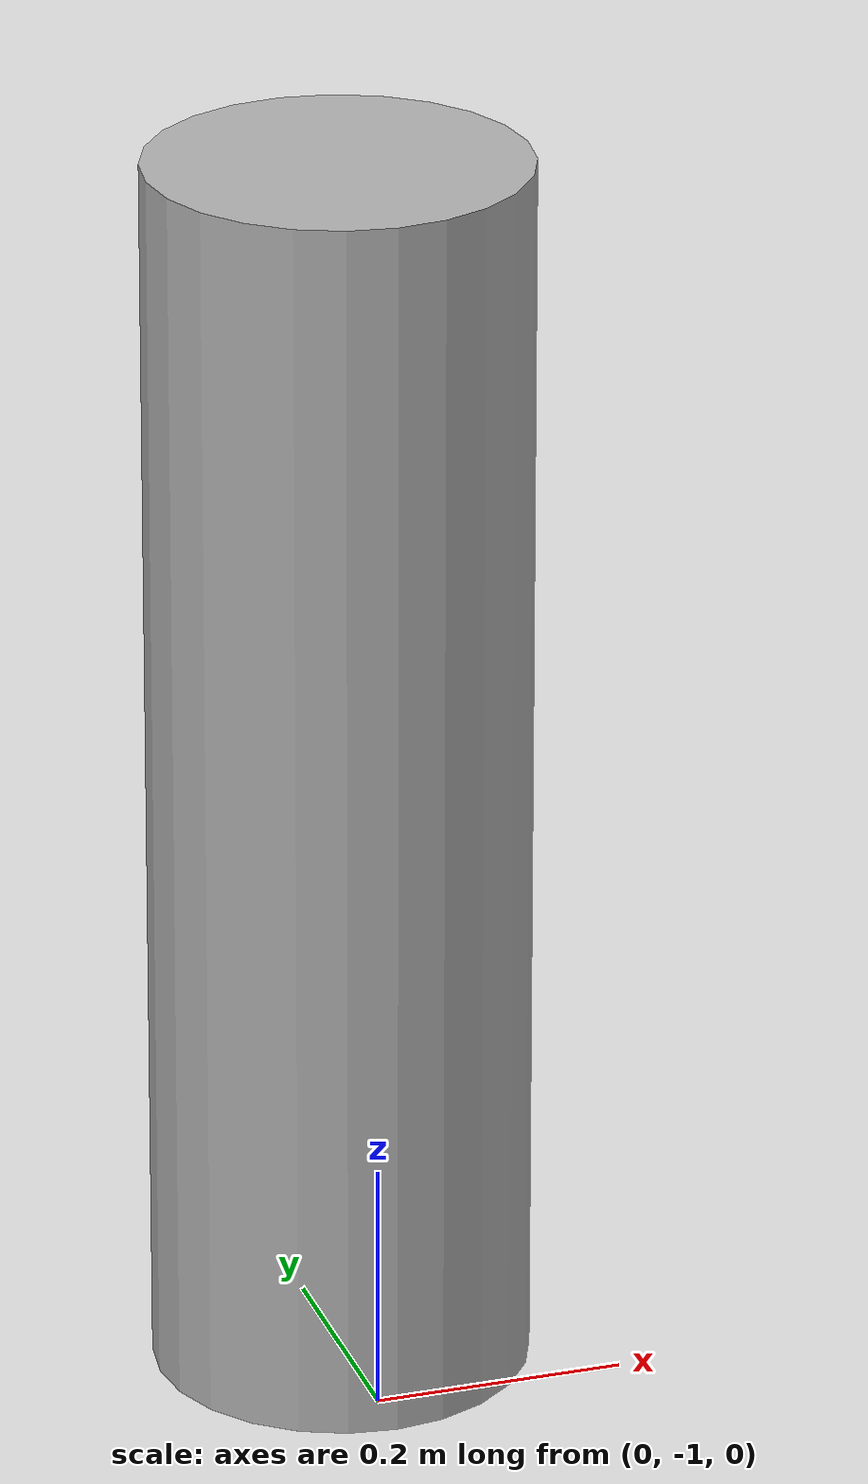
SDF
<sdf version='1.12'>
  <model name='cylinder_0'>
    <plugin filename="gz-sim-touchplugin-system"            name="gz::sim::systems::TouchPlugin">        <target>turtlebot3_burger</target>        <namespace>obstacle</namespace>        <time>0.001</time>        <enabled>true</enabled>    </plugin>    <pose>0.0 -0.9 0.5 0.0 0.0 0.0</pose>
    <link name='cylinder_link'>
      <sensor name='sensor_contact' type='contact'>          <contact>              <collision>cylinder_collision</collision>          </contact>      </sensor>      <inertial>
        <inertia>
          <ixx>10.674999999999999</ixx>
          <ixy>0</ixy>
          <ixz>0</ixz>
          <iyy>10.674999999999999</iyy>
          <iyz>0</iyz>
          <izz>1.3499999999999999</izz>
        </inertia>
        <mass>120</mass>
        <pose>0 0 0 0 0 0</pose>
      </inertial>
      <collision name='cylinder_collision'>
        <geometry>
          <cylinder>
            <radius>0.15</radius>
            <length>1.0</length>
          </cylinder>
        </geometry>
        <surface>
          <friction>
            <ode/>
          </friction>
          <bounce/>
          <contact/>
        </surface>
      </collision>
      <visual name='cylinder_visual'>
        <geometry>
          <cylinder>
            <radius>0.15</radius>
            <length>1.0</length>
          </cylinder>
        </geometry>
        <material>
          <ambient>0.300000012 0.300000012 0.300000012 1</ambient>
          <diffuse>0.699999988 0.699999988 0.699999988 1</diffuse>
          <specular>1 1 1 1</specular>
        </material>
      </visual>
      <pose>0 0 0 0 0 0</pose>
      <enable_wind>false</enable_wind>
    </link>
    <static>false</static>
    <self_collide>false</self_collide>
  </model>
</sdf>
